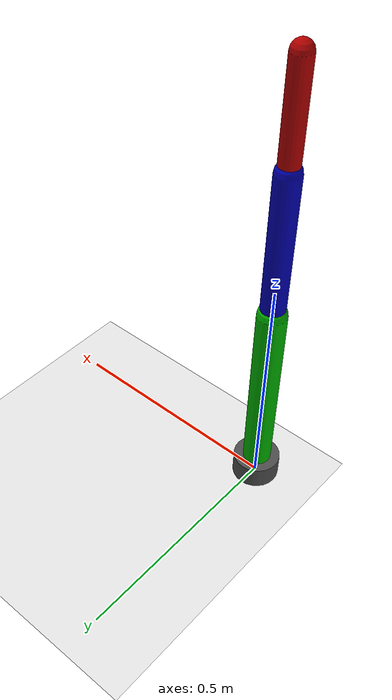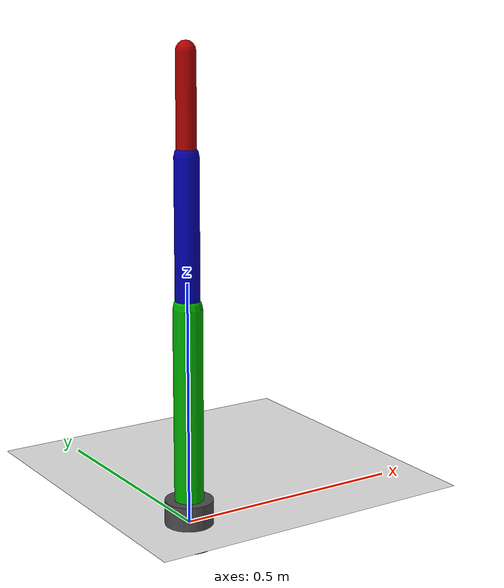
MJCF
<mujoco model="3d_chain_arm">
    <option timestep="0.0005" gravity="0 0 -9.81"/>

    <worldbody>
        <light pos="0 0 3" dir="0 0 -1"/>
        <geom type="plane" size="10 10 0.1" rgba="0.9 0.9 0.9 1"/>

        <!-- Root base attached directly to the ground at Z = 0 -->
        <body name="base" pos="0 0 0">
            <geom type="cylinder" size="0.05 0.05" rgba="0.3 0.3 0.3 1"/>

            <!-- Link 1: Shoulder (Rotates around Y-axis) -->
            <body name="link1" pos="0 0 0.05">
                <joint name="shoulder_joint" type="hinge" axis="0 1 0" pos="0 0 0"/>
                <geom type="capsule" fromto="0 0 0 0 0 0.4" size="0.03" rgba="0 0.7 0 1"/>

                <!-- Link 2: Elbow (Nested inside Link 1) -->
                <body name="link2" pos="0 0 0.4">
                    <joint name="elbow_joint" type="hinge" axis="0 1 0" pos="0 0 0"/>
                    <geom type="capsule" fromto="0 0 0 0 0 0.3" size="0.025" rgba="0 0 0.7 1"/>

                    <!-- Link 3: Wrist (Nested inside Link 2) -->
                    <body name="link3" pos="0 0 0.3">
                        <joint name="wrist_joint" type="hinge" axis="0 1 0" pos="0 0 0"/>
                        <geom type="capsule" fromto="0 0 0 0 0 0.2" size="0.02" rgba="0.7 0 0 1"/>
                    </body>
                </body>
            </body>
        </body>
    </worldbody>

    <actuator>
        <!-- Distinct position servos controlling each joint independently -->
        <position name="shoulder_servo" joint="shoulder_joint" kp="300" kv="30"/>
        <position name="elbow_servo" joint="elbow_joint" kp="200" kv="20"/>
        <!-- position name="wrist_servo" joint="wrist_joint" kp="100" kv="10"/ -->
    </actuator>
</mujoco>
